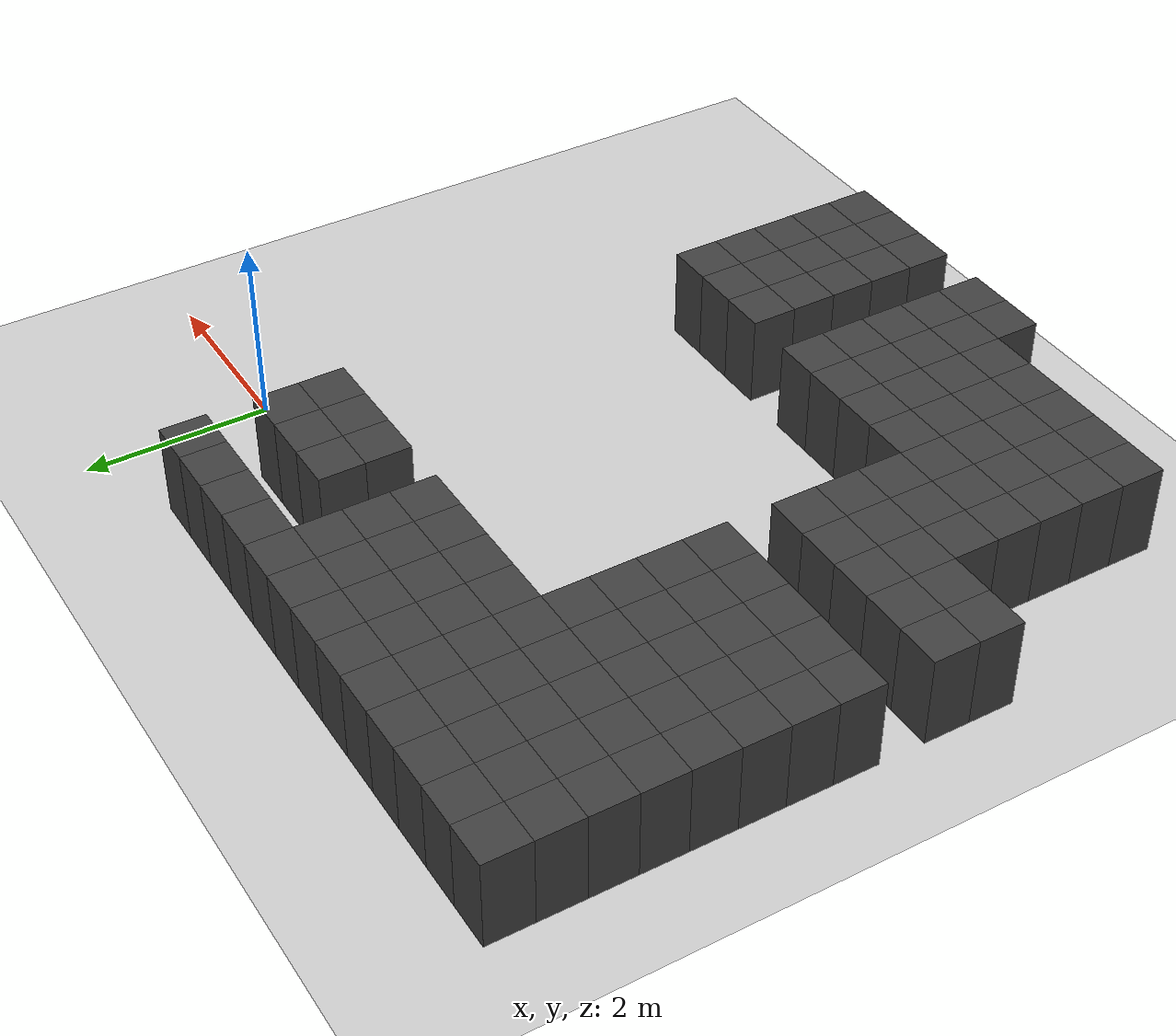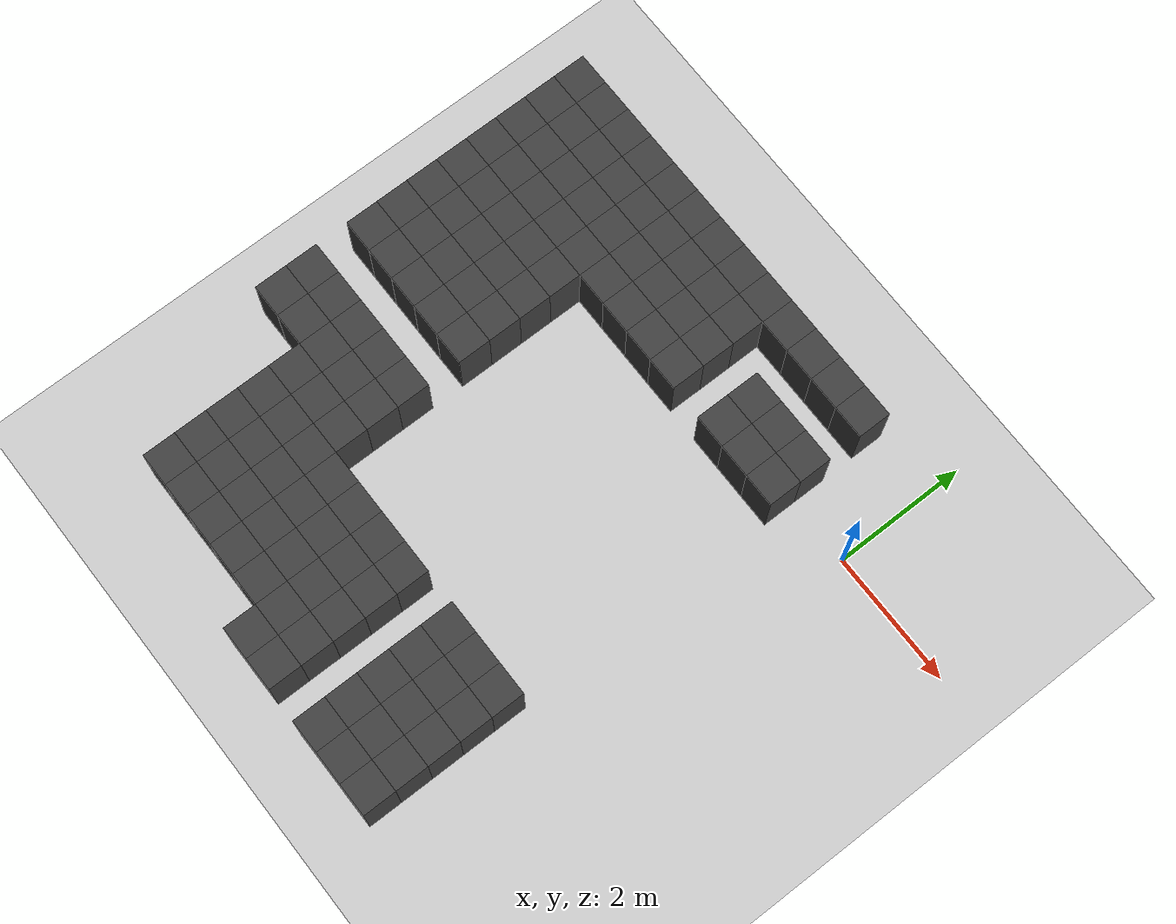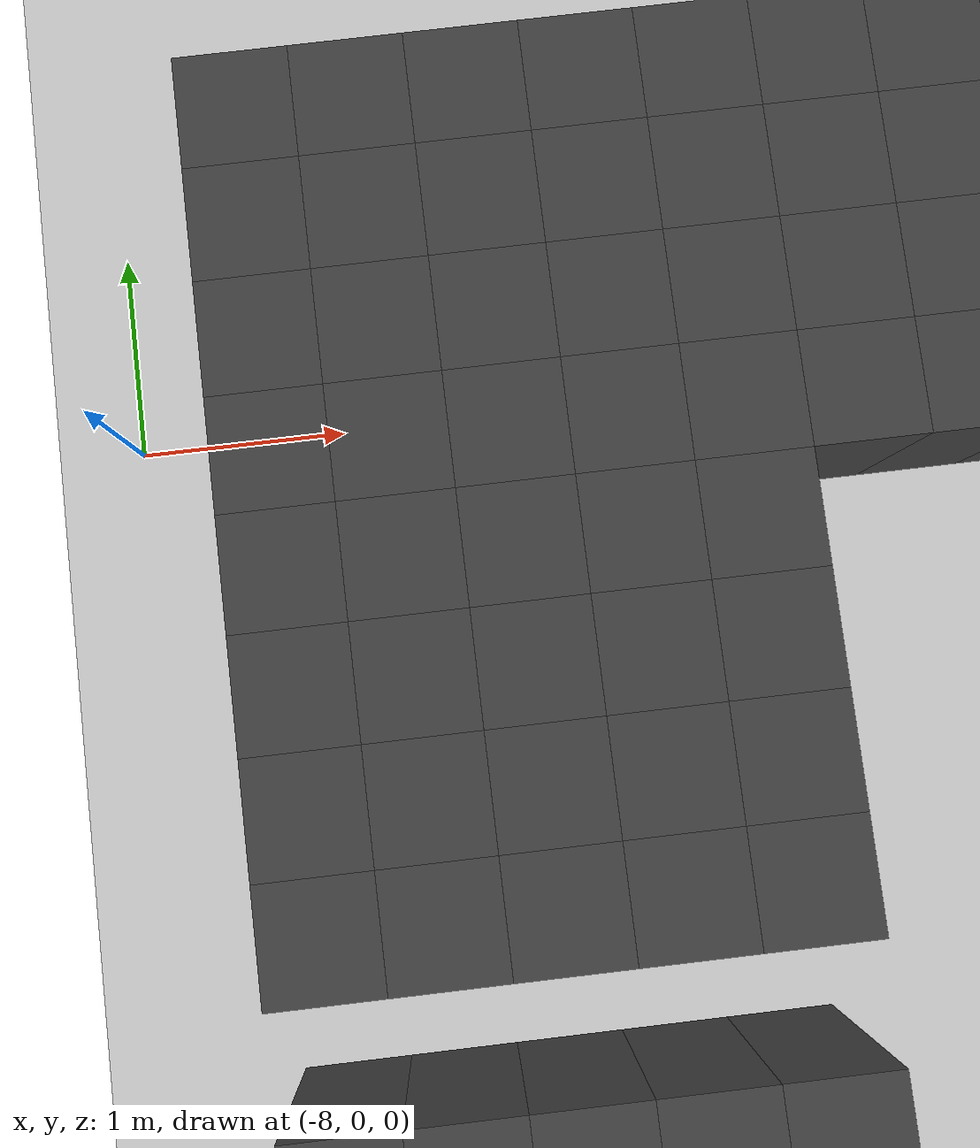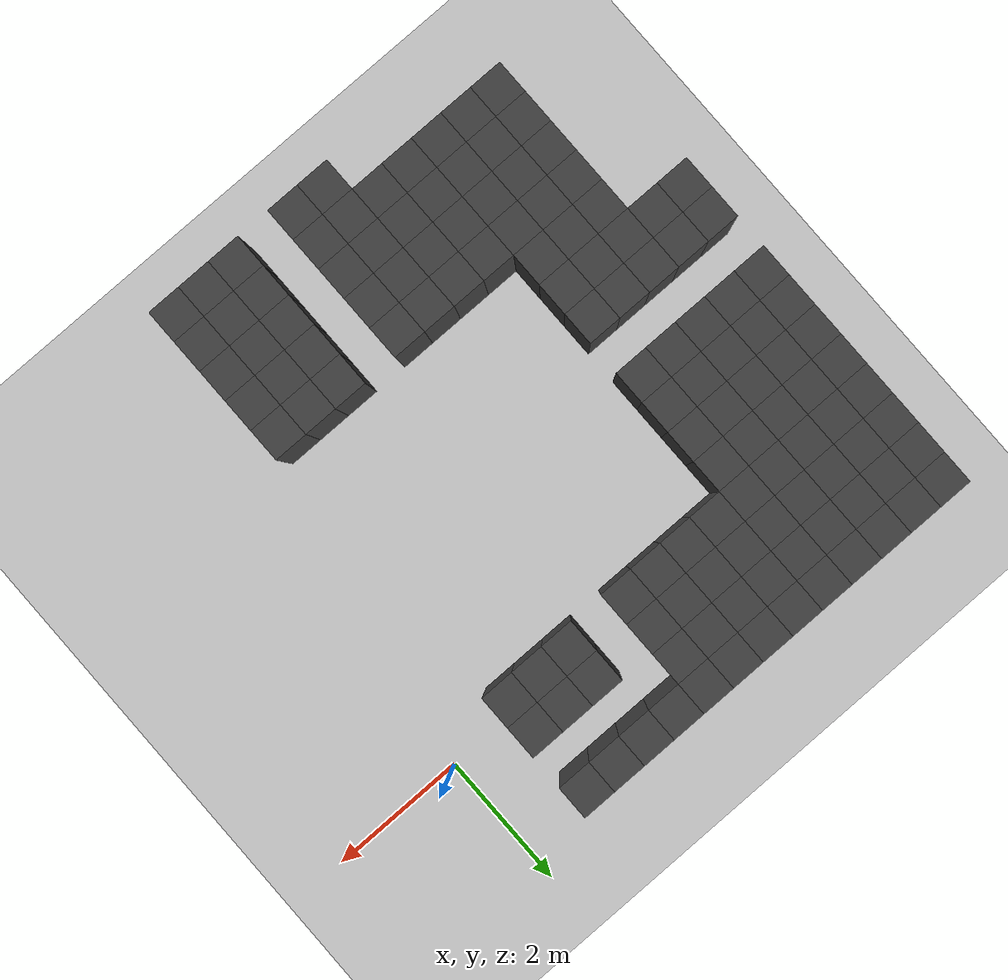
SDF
<sdf version="1.7">
 <world name="map_10726">
  <model name="ground_plane">
   <static>true</static>
   <link name="link">
    <collision name="collision">
     <geometry><plane><normal>0 0 1</normal><size>200 200</size></plane></geometry>
    </collision>
    <visual name="visual">
     <geometry><plane><normal>0 0 1</normal><size>200 200</size></plane></geometry>
     <material><ambient>0.8 0.8 0.8 1</ambient><diffuse>0.8 0.8 0.8 1</diffuse></material>
    </visual>
   </link>
  </model>
  <model name="maze_environment">
   <static>true</static>
   <link name="wall_1013">
    <pose>-7.250 1.250 0.500 0 0 0</pose>
    <collision name="col"><geometry><box><size>0.5 0.5 1.0</size></box></geometry></collision>
    <visual name="vis">
     <geometry><box><size>0.5 0.5 1.0</size></box></geometry>
     <material><ambient>0.15 0.15 0.15 1</ambient><diffuse>0.25 0.25 0.25 1</diffuse></material>
    </visual>
   </link>
   <link name="wall_1014">
    <pose>-6.750 1.250 0.500 0 0 0</pose>
    <collision name="col"><geometry><box><size>0.5 0.5 1.0</size></box></geometry></collision>
    <visual name="vis">
     <geometry><box><size>0.5 0.5 1.0</size></box></geometry>
     <material><ambient>0.15 0.15 0.15 1</ambient><diffuse>0.25 0.25 0.25 1</diffuse></material>
    </visual>
   </link>
   <link name="wall_1015">
    <pose>-6.250 1.250 0.500 0 0 0</pose>
    <collision name="col"><geometry><box><size>0.5 0.5 1.0</size></box></geometry></collision>
    <visual name="vis">
     <geometry><box><size>0.5 0.5 1.0</size></box></geometry>
     <material><ambient>0.15 0.15 0.15 1</ambient><diffuse>0.25 0.25 0.25 1</diffuse></material>
    </visual>
   </link>
   <link name="wall_1016">
    <pose>-5.750 1.250 0.500 0 0 0</pose>
    <collision name="col"><geometry><box><size>0.5 0.5 1.0</size></box></geometry></collision>
    <visual name="vis">
     <geometry><box><size>0.5 0.5 1.0</size></box></geometry>
     <material><ambient>0.15 0.15 0.15 1</ambient><diffuse>0.25 0.25 0.25 1</diffuse></material>
    </visual>
   </link>
   <link name="wall_1017">
    <pose>-5.250 1.250 0.500 0 0 0</pose>
    <collision name="col"><geometry><box><size>0.5 0.5 1.0</size></box></geometry></collision>
    <visual name="vis">
     <geometry><box><size>0.5 0.5 1.0</size></box></geometry>
     <material><ambient>0.15 0.15 0.15 1</ambient><diffuse>0.25 0.25 0.25 1</diffuse></material>
    </visual>
   </link>
   <link name="wall_1018">
    <pose>-4.750 1.250 0.500 0 0 0</pose>
    <collision name="col"><geometry><box><size>0.5 0.5 1.0</size></box></geometry></collision>
    <visual name="vis">
     <geometry><box><size>0.5 0.5 1.0</size></box></geometry>
     <material><ambient>0.15 0.15 0.15 1</ambient><diffuse>0.25 0.25 0.25 1</diffuse></material>
    </visual>
   </link>
   <link name="wall_1019">
    <pose>-4.250 1.250 0.500 0 0 0</pose>
    <collision name="col"><geometry><box><size>0.5 0.5 1.0</size></box></geometry></collision>
    <visual name="vis">
     <geometry><box><size>0.5 0.5 1.0</size></box></geometry>
     <material><ambient>0.15 0.15 0.15 1</ambient><diffuse>0.25 0.25 0.25 1</diffuse></material>
    </visual>
   </link>
   <link name="wall_1020">
    <pose>-3.750 1.250 0.500 0 0 0</pose>
    <collision name="col"><geometry><box><size>0.5 0.5 1.0</size></box></geometry></collision>
    <visual name="vis">
     <geometry><box><size>0.5 0.5 1.0</size></box></geometry>
     <material><ambient>0.15 0.15 0.15 1</ambient><diffuse>0.25 0.25 0.25 1</diffuse></material>
    </visual>
   </link>
   <link name="wall_1021">
    <pose>-3.250 1.250 0.500 0 0 0</pose>
    <collision name="col"><geometry><box><size>0.5 0.5 1.0</size></box></geometry></collision>
    <visual name="vis">
     <geometry><box><size>0.5 0.5 1.0</size></box></geometry>
     <material><ambient>0.15 0.15 0.15 1</ambient><diffuse>0.25 0.25 0.25 1</diffuse></material>
    </visual>
   </link>
   <link name="wall_1022">
    <pose>-2.750 1.250 0.500 0 0 0</pose>
    <collision name="col"><geometry><box><size>0.5 0.5 1.0</size></box></geometry></collision>
    <visual name="vis">
     <geometry><box><size>0.5 0.5 1.0</size></box></geometry>
     <material><ambient>0.15 0.15 0.15 1</ambient><diffuse>0.25 0.25 0.25 1</diffuse></material>
    </visual>
   </link>
   <link name="wall_1023">
    <pose>-2.250 1.250 0.500 0 0 0</pose>
    <collision name="col"><geometry><box><size>0.5 0.5 1.0</size></box></geometry></collision>
    <visual name="vis">
     <geometry><box><size>0.5 0.5 1.0</size></box></geometry>
     <material><ambient>0.15 0.15 0.15 1</ambient><diffuse>0.25 0.25 0.25 1</diffuse></material>
    </visual>
   </link>
   <link name="wall_1024">
    <pose>-1.750 1.250 0.500 0 0 0</pose>
    <collision name="col"><geometry><box><size>0.5 0.5 1.0</size></box></geometry></collision>
    <visual name="vis">
     <geometry><box><size>0.5 0.5 1.0</size></box></geometry>
     <material><ambient>0.15 0.15 0.15 1</ambient><diffuse>0.25 0.25 0.25 1</diffuse></material>
    </visual>
   </link>
   <link name="wall_1025">
    <pose>-1.250 1.250 0.500 0 0 0</pose>
    <collision name="col"><geometry><box><size>0.5 0.5 1.0</size></box></geometry></collision>
    <visual name="vis">
     <geometry><box><size>0.5 0.5 1.0</size></box></geometry>
     <material><ambient>0.15 0.15 0.15 1</ambient><diffuse>0.25 0.25 0.25 1</diffuse></material>
    </visual>
   </link>
   <link name="wall_1055">
    <pose>-7.250 0.750 0.500 0 0 0</pose>
    <collision name="col"><geometry><box><size>0.5 0.5 1.0</size></box></geometry></collision>
    <visual name="vis">
     <geometry><box><size>0.5 0.5 1.0</size></box></geometry>
     <material><ambient>0.15 0.15 0.15 1</ambient><diffuse>0.25 0.25 0.25 1</diffuse></material>
    </visual>
   </link>
   <link name="wall_1056">
    <pose>-6.750 0.750 0.500 0 0 0</pose>
    <collision name="col"><geometry><box><size>0.5 0.5 1.0</size></box></geometry></collision>
    <visual name="vis">
     <geometry><box><size>0.5 0.5 1.0</size></box></geometry>
     <material><ambient>0.15 0.15 0.15 1</ambient><diffuse>0.25 0.25 0.25 1</diffuse></material>
    </visual>
   </link>
   <link name="wall_1057">
    <pose>-6.250 0.750 0.500 0 0 0</pose>
    <collision name="col"><geometry><box><size>0.5 0.5 1.0</size></box></geometry></collision>
    <visual name="vis">
     <geometry><box><size>0.5 0.5 1.0</size></box></geometry>
     <material><ambient>0.15 0.15 0.15 1</ambient><diffuse>0.25 0.25 0.25 1</diffuse></material>
    </visual>
   </link>
   <link name="wall_1058">
    <pose>-5.750 0.750 0.500 0 0 0</pose>
    <collision name="col"><geometry><box><size>0.5 0.5 1.0</size></box></geometry></collision>
    <visual name="vis">
     <geometry><box><size>0.5 0.5 1.0</size></box></geometry>
     <material><ambient>0.15 0.15 0.15 1</ambient><diffuse>0.25 0.25 0.25 1</diffuse></material>
    </visual>
   </link>
   <link name="wall_1059">
    <pose>-5.250 0.750 0.500 0 0 0</pose>
    <collision name="col"><geometry><box><size>0.5 0.5 1.0</size></box></geometry></collision>
    <visual name="vis">
     <geometry><box><size>0.5 0.5 1.0</size></box></geometry>
     <material><ambient>0.15 0.15 0.15 1</ambient><diffuse>0.25 0.25 0.25 1</diffuse></material>
    </visual>
   </link>
   <link name="wall_1060">
    <pose>-4.750 0.750 0.500 0 0 0</pose>
    <collision name="col"><geometry><box><size>0.5 0.5 1.0</size></box></geometry></collision>
    <visual name="vis">
     <geometry><box><size>0.5 0.5 1.0</size></box></geometry>
     <material><ambient>0.15 0.15 0.15 1</ambient><diffuse>0.25 0.25 0.25 1</diffuse></material>
    </visual>
   </link>
   <link name="wall_1061">
    <pose>-4.250 0.750 0.500 0 0 0</pose>
    <collision name="col"><geometry><box><size>0.5 0.5 1.0</size></box></geometry></collision>
    <visual name="vis">
     <geometry><box><size>0.5 0.5 1.0</size></box></geometry>
     <material><ambient>0.15 0.15 0.15 1</ambient><diffuse>0.25 0.25 0.25 1</diffuse></material>
    </visual>
   </link>
   <link name="wall_1062">
    <pose>-3.750 0.750 0.500 0 0 0</pose>
    <collision name="col"><geometry><box><size>0.5 0.5 1.0</size></box></geometry></collision>
    <visual name="vis">
     <geometry><box><size>0.5 0.5 1.0</size></box></geometry>
     <material><ambient>0.15 0.15 0.15 1</ambient><diffuse>0.25 0.25 0.25 1</diffuse></material>
    </visual>
   </link>
   <link name="wall_1063">
    <pose>-3.250 0.750 0.500 0 0 0</pose>
    <collision name="col"><geometry><box><size>0.5 0.5 1.0</size></box></geometry></collision>
    <visual name="vis">
     <geometry><box><size>0.5 0.5 1.0</size></box></geometry>
     <material><ambient>0.15 0.15 0.15 1</ambient><diffuse>0.25 0.25 0.25 1</diffuse></material>
    </visual>
   </link>
   <link name="wall_1087">
    <pose>-7.250 0.250 0.500 0 0 0</pose>
    <collision name="col"><geometry><box><size>0.5 0.5 1.0</size></box></geometry></collision>
    <visual name="vis">
     <geometry><box><size>0.5 0.5 1.0</size></box></geometry>
     <material><ambient>0.15 0.15 0.15 1</ambient><diffuse>0.25 0.25 0.25 1</diffuse></material>
    </visual>
   </link>
   <link name="wall_1088">
    <pose>-6.750 0.250 0.500 0 0 0</pose>
    <collision name="col"><geometry><box><size>0.5 0.5 1.0</size></box></geometry></collision>
    <visual name="vis">
     <geometry><box><size>0.5 0.5 1.0</size></box></geometry>
     <material><ambient>0.15 0.15 0.15 1</ambient><diffuse>0.25 0.25 0.25 1</diffuse></material>
    </visual>
   </link>
   <link name="wall_1089">
    <pose>-6.250 0.250 0.500 0 0 0</pose>
    <collision name="col"><geometry><box><size>0.5 0.5 1.0</size></box></geometry></collision>
    <visual name="vis">
     <geometry><box><size>0.5 0.5 1.0</size></box></geometry>
     <material><ambient>0.15 0.15 0.15 1</ambient><diffuse>0.25 0.25 0.25 1</diffuse></material>
    </visual>
   </link>
   <link name="wall_1090">
    <pose>-5.750 0.250 0.500 0 0 0</pose>
    <collision name="col"><geometry><box><size>0.5 0.5 1.0</size></box></geometry></collision>
    <visual name="vis">
     <geometry><box><size>0.5 0.5 1.0</size></box></geometry>
     <material><ambient>0.15 0.15 0.15 1</ambient><diffuse>0.25 0.25 0.25 1</diffuse></material>
    </visual>
   </link>
   <link name="wall_1091">
    <pose>-5.250 0.250 0.500 0 0 0</pose>
    <collision name="col"><geometry><box><size>0.5 0.5 1.0</size></box></geometry></collision>
    <visual name="vis">
     <geometry><box><size>0.5 0.5 1.0</size></box></geometry>
     <material><ambient>0.15 0.15 0.15 1</ambient><diffuse>0.25 0.25 0.25 1</diffuse></material>
    </visual>
   </link>
   <link name="wall_1092">
    <pose>-4.750 0.250 0.500 0 0 0</pose>
    <collision name="col"><geometry><box><size>0.5 0.5 1.0</size></box></geometry></collision>
    <visual name="vis">
     <geometry><box><size>0.5 0.5 1.0</size></box></geometry>
     <material><ambient>0.15 0.15 0.15 1</ambient><diffuse>0.25 0.25 0.25 1</diffuse></material>
    </visual>
   </link>
   <link name="wall_1093">
    <pose>-4.250 0.250 0.500 0 0 0</pose>
    <collision name="col"><geometry><box><size>0.5 0.5 1.0</size></box></geometry></collision>
    <visual name="vis">
     <geometry><box><size>0.5 0.5 1.0</size></box></geometry>
     <material><ambient>0.15 0.15 0.15 1</ambient><diffuse>0.25 0.25 0.25 1</diffuse></material>
    </visual>
   </link>
   <link name="wall_1094">
    <pose>-3.750 0.250 0.500 0 0 0</pose>
    <collision name="col"><geometry><box><size>0.5 0.5 1.0</size></box></geometry></collision>
    <visual name="vis">
     <geometry><box><size>0.5 0.5 1.0</size></box></geometry>
     <material><ambient>0.15 0.15 0.15 1</ambient><diffuse>0.25 0.25 0.25 1</diffuse></material>
    </visual>
   </link>
   <link name="wall_1095">
    <pose>-3.250 0.250 0.500 0 0 0</pose>
    <collision name="col"><geometry><box><size>0.5 0.5 1.0</size></box></geometry></collision>
    <visual name="vis">
     <geometry><box><size>0.5 0.5 1.0</size></box></geometry>
     <material><ambient>0.15 0.15 0.15 1</ambient><diffuse>0.25 0.25 0.25 1</diffuse></material>
    </visual>
   </link>
   <link name="wall_1096">
    <pose>-2.250 0.250 0.500 0 0 0</pose>
    <collision name="col"><geometry><box><size>0.5 0.5 1.0</size></box></geometry></collision>
    <visual name="vis">
     <geometry><box><size>0.5 0.5 1.0</size></box></geometry>
     <material><ambient>0.15 0.15 0.15 1</ambient><diffuse>0.25 0.25 0.25 1</diffuse></material>
    </visual>
   </link>
   <link name="wall_1097">
    <pose>-1.750 0.250 0.500 0 0 0</pose>
    <collision name="col"><geometry><box><size>0.5 0.5 1.0</size></box></geometry></collision>
    <visual name="vis">
     <geometry><box><size>0.5 0.5 1.0</size></box></geometry>
     <material><ambient>0.15 0.15 0.15 1</ambient><diffuse>0.25 0.25 0.25 1</diffuse></material>
    </visual>
   </link>
   <link name="wall_1098">
    <pose>-1.250 0.250 0.500 0 0 0</pose>
    <collision name="col"><geometry><box><size>0.5 0.5 1.0</size></box></geometry></collision>
    <visual name="vis">
     <geometry><box><size>0.5 0.5 1.0</size></box></geometry>
     <material><ambient>0.15 0.15 0.15 1</ambient><diffuse>0.25 0.25 0.25 1</diffuse></material>
    </visual>
   </link>
   <link name="wall_1128">
    <pose>-7.250 -0.250 0.500 0 0 0</pose>
    <collision name="col"><geometry><box><size>0.5 0.5 1.0</size></box></geometry></collision>
    <visual name="vis">
     <geometry><box><size>0.5 0.5 1.0</size></box></geometry>
     <material><ambient>0.15 0.15 0.15 1</ambient><diffuse>0.25 0.25 0.25 1</diffuse></material>
    </visual>
   </link>
   <link name="wall_1129">
    <pose>-6.750 -0.250 0.500 0 0 0</pose>
    <collision name="col"><geometry><box><size>0.5 0.5 1.0</size></box></geometry></collision>
    <visual name="vis">
     <geometry><box><size>0.5 0.5 1.0</size></box></geometry>
     <material><ambient>0.15 0.15 0.15 1</ambient><diffuse>0.25 0.25 0.25 1</diffuse></material>
    </visual>
   </link>
   <link name="wall_1130">
    <pose>-6.250 -0.250 0.500 0 0 0</pose>
    <collision name="col"><geometry><box><size>0.5 0.5 1.0</size></box></geometry></collision>
    <visual name="vis">
     <geometry><box><size>0.5 0.5 1.0</size></box></geometry>
     <material><ambient>0.15 0.15 0.15 1</ambient><diffuse>0.25 0.25 0.25 1</diffuse></material>
    </visual>
   </link>
   <link name="wall_1131">
    <pose>-5.750 -0.250 0.500 0 0 0</pose>
    <collision name="col"><geometry><box><size>0.5 0.5 1.0</size></box></geometry></collision>
    <visual name="vis">
     <geometry><box><size>0.5 0.5 1.0</size></box></geometry>
     <material><ambient>0.15 0.15 0.15 1</ambient><diffuse>0.25 0.25 0.25 1</diffuse></material>
    </visual>
   </link>
   <link name="wall_1132">
    <pose>-5.250 -0.250 0.500 0 0 0</pose>
    <collision name="col"><geometry><box><size>0.5 0.5 1.0</size></box></geometry></collision>
    <visual name="vis">
     <geometry><box><size>0.5 0.5 1.0</size></box></geometry>
     <material><ambient>0.15 0.15 0.15 1</ambient><diffuse>0.25 0.25 0.25 1</diffuse></material>
    </visual>
   </link>
   <link name="wall_1133">
    <pose>-4.750 -0.250 0.500 0 0 0</pose>
    <collision name="col"><geometry><box><size>0.5 0.5 1.0</size></box></geometry></collision>
    <visual name="vis">
     <geometry><box><size>0.5 0.5 1.0</size></box></geometry>
     <material><ambient>0.15 0.15 0.15 1</ambient><diffuse>0.25 0.25 0.25 1</diffuse></material>
    </visual>
   </link>
   <link name="wall_1134">
    <pose>-4.250 -0.250 0.500 0 0 0</pose>
    <collision name="col"><geometry><box><size>0.5 0.5 1.0</size></box></geometry></collision>
    <visual name="vis">
     <geometry><box><size>0.5 0.5 1.0</size></box></geometry>
     <material><ambient>0.15 0.15 0.15 1</ambient><diffuse>0.25 0.25 0.25 1</diffuse></material>
    </visual>
   </link>
   <link name="wall_1135">
    <pose>-3.750 -0.250 0.500 0 0 0</pose>
    <collision name="col"><geometry><box><size>0.5 0.5 1.0</size></box></geometry></collision>
    <visual name="vis">
     <geometry><box><size>0.5 0.5 1.0</size></box></geometry>
     <material><ambient>0.15 0.15 0.15 1</ambient><diffuse>0.25 0.25 0.25 1</diffuse></material>
    </visual>
   </link>
   <link name="wall_1136">
    <pose>-3.250 -0.250 0.500 0 0 0</pose>
    <collision name="col"><geometry><box><size>0.5 0.5 1.0</size></box></geometry></collision>
    <visual name="vis">
     <geometry><box><size>0.5 0.5 1.0</size></box></geometry>
     <material><ambient>0.15 0.15 0.15 1</ambient><diffuse>0.25 0.25 0.25 1</diffuse></material>
    </visual>
   </link>
   <link name="wall_1137">
    <pose>-2.250 -0.250 0.500 0 0 0</pose>
    <collision name="col"><geometry><box><size>0.5 0.5 1.0</size></box></geometry></collision>
    <visual name="vis">
     <geometry><box><size>0.5 0.5 1.0</size></box></geometry>
     <material><ambient>0.15 0.15 0.15 1</ambient><diffuse>0.25 0.25 0.25 1</diffuse></material>
    </visual>
   </link>
   <link name="wall_1138">
    <pose>-1.750 -0.250 0.500 0 0 0</pose>
    <collision name="col"><geometry><box><size>0.5 0.5 1.0</size></box></geometry></collision>
    <visual name="vis">
     <geometry><box><size>0.5 0.5 1.0</size></box></geometry>
     <material><ambient>0.15 0.15 0.15 1</ambient><diffuse>0.25 0.25 0.25 1</diffuse></material>
    </visual>
   </link>
   <link name="wall_1139">
    <pose>-1.250 -0.250 0.500 0 0 0</pose>
    <collision name="col"><geometry><box><size>0.5 0.5 1.0</size></box></geometry></collision>
    <visual name="vis">
     <geometry><box><size>0.5 0.5 1.0</size></box></geometry>
     <material><ambient>0.15 0.15 0.15 1</ambient><diffuse>0.25 0.25 0.25 1</diffuse></material>
    </visual>
   </link>
   <link name="wall_1169">
    <pose>-7.250 -0.750 0.500 0 0 0</pose>
    <collision name="col"><geometry><box><size>0.5 0.5 1.0</size></box></geometry></collision>
    <visual name="vis">
     <geometry><box><size>0.5 0.5 1.0</size></box></geometry>
     <material><ambient>0.15 0.15 0.15 1</ambient><diffuse>0.25 0.25 0.25 1</diffuse></material>
    </visual>
   </link>
   <link name="wall_1170">
    <pose>-6.750 -0.750 0.500 0 0 0</pose>
    <collision name="col"><geometry><box><size>0.5 0.5 1.0</size></box></geometry></collision>
    <visual name="vis">
     <geometry><box><size>0.5 0.5 1.0</size></box></geometry>
     <material><ambient>0.15 0.15 0.15 1</ambient><diffuse>0.25 0.25 0.25 1</diffuse></material>
    </visual>
   </link>
   <link name="wall_1171">
    <pose>-6.250 -0.750 0.500 0 0 0</pose>
    <collision name="col"><geometry><box><size>0.5 0.5 1.0</size></box></geometry></collision>
    <visual name="vis">
     <geometry><box><size>0.5 0.5 1.0</size></box></geometry>
     <material><ambient>0.15 0.15 0.15 1</ambient><diffuse>0.25 0.25 0.25 1</diffuse></material>
    </visual>
   </link>
   <link name="wall_1172">
    <pose>-5.750 -0.750 0.500 0 0 0</pose>
    <collision name="col"><geometry><box><size>0.5 0.5 1.0</size></box></geometry></collision>
    <visual name="vis">
     <geometry><box><size>0.5 0.5 1.0</size></box></geometry>
     <material><ambient>0.15 0.15 0.15 1</ambient><diffuse>0.25 0.25 0.25 1</diffuse></material>
    </visual>
   </link>
   <link name="wall_1173">
    <pose>-5.250 -0.750 0.500 0 0 0</pose>
    <collision name="col"><geometry><box><size>0.5 0.5 1.0</size></box></geometry></collision>
    <visual name="vis">
     <geometry><box><size>0.5 0.5 1.0</size></box></geometry>
     <material><ambient>0.15 0.15 0.15 1</ambient><diffuse>0.25 0.25 0.25 1</diffuse></material>
    </visual>
   </link>
   <link name="wall_1209">
    <pose>-7.250 -1.250 0.500 0 0 0</pose>
    <collision name="col"><geometry><box><size>0.5 0.5 1.0</size></box></geometry></collision>
    <visual name="vis">
     <geometry><box><size>0.5 0.5 1.0</size></box></geometry>
     <material><ambient>0.15 0.15 0.15 1</ambient><diffuse>0.25 0.25 0.25 1</diffuse></material>
    </visual>
   </link>
   <link name="wall_1210">
    <pose>-6.750 -1.250 0.500 0 0 0</pose>
    <collision name="col"><geometry><box><size>0.5 0.5 1.0</size></box></geometry></collision>
    <visual name="vis">
     <geometry><box><size>0.5 0.5 1.0</size></box></geometry>
     <material><ambient>0.15 0.15 0.15 1</ambient><diffuse>0.25 0.25 0.25 1</diffuse></material>
    </visual>
   </link>
   <link name="wall_1211">
    <pose>-6.250 -1.250 0.500 0 0 0</pose>
    <collision name="col"><geometry><box><size>0.5 0.5 1.0</size></box></geometry></collision>
    <visual name="vis">
     <geometry><box><size>0.5 0.5 1.0</size></box></geometry>
     <material><ambient>0.15 0.15 0.15 1</ambient><diffuse>0.25 0.25 0.25 1</diffuse></material>
    </visual>
   </link>
   <link name="wall_1212">
    <pose>-5.750 -1.250 0.500 0 0 0</pose>
    <collision name="col"><geometry><box><size>0.5 0.5 1.0</size></box></geometry></collision>
    <visual name="vis">
     <geometry><box><size>0.5 0.5 1.0</size></box></geometry>
     <material><ambient>0.15 0.15 0.15 1</ambient><diffuse>0.25 0.25 0.25 1</diffuse></material>
    </visual>
   </link>
   <link name="wall_1213">
    <pose>-5.250 -1.250 0.500 0 0 0</pose>
    <collision name="col"><geometry><box><size>0.5 0.5 1.0</size></box></geometry></collision>
    <visual name="vis">
     <geometry><box><size>0.5 0.5 1.0</size></box></geometry>
     <material><ambient>0.15 0.15 0.15 1</ambient><diffuse>0.25 0.25 0.25 1</diffuse></material>
    </visual>
   </link>
   <link name="wall_1249">
    <pose>-7.250 -1.750 0.500 0 0 0</pose>
    <collision name="col"><geometry><box><size>0.5 0.5 1.0</size></box></geometry></collision>
    <visual name="vis">
     <geometry><box><size>0.5 0.5 1.0</size></box></geometry>
     <material><ambient>0.15 0.15 0.15 1</ambient><diffuse>0.25 0.25 0.25 1</diffuse></material>
    </visual>
   </link>
   <link name="wall_1250">
    <pose>-6.750 -1.750 0.500 0 0 0</pose>
    <collision name="col"><geometry><box><size>0.5 0.5 1.0</size></box></geometry></collision>
    <visual name="vis">
     <geometry><box><size>0.5 0.5 1.0</size></box></geometry>
     <material><ambient>0.15 0.15 0.15 1</ambient><diffuse>0.25 0.25 0.25 1</diffuse></material>
    </visual>
   </link>
   <link name="wall_1251">
    <pose>-6.250 -1.750 0.500 0 0 0</pose>
    <collision name="col"><geometry><box><size>0.5 0.5 1.0</size></box></geometry></collision>
    <visual name="vis">
     <geometry><box><size>0.5 0.5 1.0</size></box></geometry>
     <material><ambient>0.15 0.15 0.15 1</ambient><diffuse>0.25 0.25 0.25 1</diffuse></material>
    </visual>
   </link>
   <link name="wall_1252">
    <pose>-5.750 -1.750 0.500 0 0 0</pose>
    <collision name="col"><geometry><box><size>0.5 0.5 1.0</size></box></geometry></collision>
    <visual name="vis">
     <geometry><box><size>0.5 0.5 1.0</size></box></geometry>
     <material><ambient>0.15 0.15 0.15 1</ambient><diffuse>0.25 0.25 0.25 1</diffuse></material>
    </visual>
   </link>
   <link name="wall_1253">
    <pose>-5.250 -1.750 0.500 0 0 0</pose>
    <collision name="col"><geometry><box><size>0.5 0.5 1.0</size></box></geometry></collision>
    <visual name="vis">
     <geometry><box><size>0.5 0.5 1.0</size></box></geometry>
     <material><ambient>0.15 0.15 0.15 1</ambient><diffuse>0.25 0.25 0.25 1</diffuse></material>
    </visual>
   </link>
   <link name="wall_1281">
    <pose>-7.250 -2.250 0.500 0 0 0</pose>
    <collision name="col"><geometry><box><size>0.5 0.5 1.0</size></box></geometry></collision>
    <visual name="vis">
     <geometry><box><size>0.5 0.5 1.0</size></box></geometry>
     <material><ambient>0.15 0.15 0.15 1</ambient><diffuse>0.25 0.25 0.25 1</diffuse></material>
    </visual>
   </link>
   <link name="wall_1282">
    <pose>-6.750 -2.250 0.500 0 0 0</pose>
    <collision name="col"><geometry><box><size>0.5 0.5 1.0</size></box></geometry></collision>
    <visual name="vis">
     <geometry><box><size>0.5 0.5 1.0</size></box></geometry>
     <material><ambient>0.15 0.15 0.15 1</ambient><diffuse>0.25 0.25 0.25 1</diffuse></material>
    </visual>
   </link>
   <link name="wall_1283">
    <pose>-6.250 -2.250 0.500 0 0 0</pose>
    <collision name="col"><geometry><box><size>0.5 0.5 1.0</size></box></geometry></collision>
    <visual name="vis">
     <geometry><box><size>0.5 0.5 1.0</size></box></geometry>
     <material><ambient>0.15 0.15 0.15 1</ambient><diffuse>0.25 0.25 0.25 1</diffuse></material>
    </visual>
   </link>
   <link name="wall_1284">
    <pose>-5.750 -2.250 0.500 0 0 0</pose>
    <collision name="col"><geometry><box><size>0.5 0.5 1.0</size></box></geometry></collision>
    <visual name="vis">
     <geometry><box><size>0.5 0.5 1.0</size></box></geometry>
     <material><ambient>0.15 0.15 0.15 1</ambient><diffuse>0.25 0.25 0.25 1</diffuse></material>
    </visual>
   </link>
   <link name="wall_1285">
    <pose>-5.250 -2.250 0.500 0 0 0</pose>
    <collision name="col"><geometry><box><size>0.5 0.5 1.0</size></box></geometry></collision>
    <visual name="vis">
     <geometry><box><size>0.5 0.5 1.0</size></box></geometry>
     <material><ambient>0.15 0.15 0.15 1</ambient><diffuse>0.25 0.25 0.25 1</diffuse></material>
    </visual>
   </link>
   <link name="wall_1336">
    <pose>-7.250 -3.250 0.500 0 0 0</pose>
    <collision name="col"><geometry><box><size>0.5 0.5 1.0</size></box></geometry></collision>
    <visual name="vis">
     <geometry><box><size>0.5 0.5 1.0</size></box></geometry>
     <material><ambient>0.15 0.15 0.15 1</ambient><diffuse>0.25 0.25 0.25 1</diffuse></material>
    </visual>
   </link>
   <link name="wall_1337">
    <pose>-6.750 -3.250 0.500 0 0 0</pose>
    <collision name="col"><geometry><box><size>0.5 0.5 1.0</size></box></geometry></collision>
    <visual name="vis">
     <geometry><box><size>0.5 0.5 1.0</size></box></geometry>
     <material><ambient>0.15 0.15 0.15 1</ambient><diffuse>0.25 0.25 0.25 1</diffuse></material>
    </visual>
   </link>
   <link name="wall_1338">
    <pose>-6.250 -3.250 0.500 0 0 0</pose>
    <collision name="col"><geometry><box><size>0.5 0.5 1.0</size></box></geometry></collision>
    <visual name="vis">
     <geometry><box><size>0.5 0.5 1.0</size></box></geometry>
     <material><ambient>0.15 0.15 0.15 1</ambient><diffuse>0.25 0.25 0.25 1</diffuse></material>
    </visual>
   </link>
   <link name="wall_1339">
    <pose>-5.750 -3.250 0.500 0 0 0</pose>
    <collision name="col"><geometry><box><size>0.5 0.5 1.0</size></box></geometry></collision>
    <visual name="vis">
     <geometry><box><size>0.5 0.5 1.0</size></box></geometry>
     <material><ambient>0.15 0.15 0.15 1</ambient><diffuse>0.25 0.25 0.25 1</diffuse></material>
    </visual>
   </link>
   <link name="wall_1340">
    <pose>-5.250 -3.250 0.500 0 0 0</pose>
    <collision name="col"><geometry><box><size>0.5 0.5 1.0</size></box></geometry></collision>
    <visual name="vis">
     <geometry><box><size>0.5 0.5 1.0</size></box></geometry>
     <material><ambient>0.15 0.15 0.15 1</ambient><diffuse>0.25 0.25 0.25 1</diffuse></material>
    </visual>
   </link>
   <link name="wall_1368">
    <pose>-7.250 -3.750 0.500 0 0 0</pose>
    <collision name="col"><geometry><box><size>0.5 0.5 1.0</size></box></geometry></collision>
    <visual name="vis">
     <geometry><box><size>0.5 0.5 1.0</size></box></geometry>
     <material><ambient>0.15 0.15 0.15 1</ambient><diffuse>0.25 0.25 0.25 1</diffuse></material>
    </visual>
   </link>
   <link name="wall_1369">
    <pose>-6.750 -3.750 0.500 0 0 0</pose>
    <collision name="col"><geometry><box><size>0.5 0.5 1.0</size></box></geometry></collision>
    <visual name="vis">
     <geometry><box><size>0.5 0.5 1.0</size></box></geometry>
     <material><ambient>0.15 0.15 0.15 1</ambient><diffuse>0.25 0.25 0.25 1</diffuse></material>
    </visual>
   </link>
   <link name="wall_1370">
    <pose>-6.250 -3.750 0.500 0 0 0</pose>
    <collision name="col"><geometry><box><size>0.5 0.5 1.0</size></box></geometry></collision>
    <visual name="vis">
     <geometry><box><size>0.5 0.5 1.0</size></box></geometry>
     <material><ambient>0.15 0.15 0.15 1</ambient><diffuse>0.25 0.25 0.25 1</diffuse></material>
    </visual>
   </link>
   <link name="wall_1371">
    <pose>-5.750 -3.750 0.500 0 0 0</pose>
    <collision name="col"><geometry><box><size>0.5 0.5 1.0</size></box></geometry></collision>
    <visual name="vis">
     <geometry><box><size>0.5 0.5 1.0</size></box></geometry>
     <material><ambient>0.15 0.15 0.15 1</ambient><diffuse>0.25 0.25 0.25 1</diffuse></material>
    </visual>
   </link>
   <link name="wall_1372">
    <pose>-5.250 -3.750 0.500 0 0 0</pose>
    <collision name="col"><geometry><box><size>0.5 0.5 1.0</size></box></geometry></collision>
    <visual name="vis">
     <geometry><box><size>0.5 0.5 1.0</size></box></geometry>
     <material><ambient>0.15 0.15 0.15 1</ambient><diffuse>0.25 0.25 0.25 1</diffuse></material>
    </visual>
   </link>
   <link name="wall_1404">
    <pose>-6.250 -4.250 0.500 0 0 0</pose>
    <collision name="col"><geometry><box><size>0.5 0.5 1.0</size></box></geometry></collision>
    <visual name="vis">
     <geometry><box><size>0.5 0.5 1.0</size></box></geometry>
     <material><ambient>0.15 0.15 0.15 1</ambient><diffuse>0.25 0.25 0.25 1</diffuse></material>
    </visual>
   </link>
   <link name="wall_1405">
    <pose>-5.750 -4.250 0.500 0 0 0</pose>
    <collision name="col"><geometry><box><size>0.5 0.5 1.0</size></box></geometry></collision>
    <visual name="vis">
     <geometry><box><size>0.5 0.5 1.0</size></box></geometry>
     <material><ambient>0.15 0.15 0.15 1</ambient><diffuse>0.25 0.25 0.25 1</diffuse></material>
    </visual>
   </link>
   <link name="wall_1406">
    <pose>-5.250 -4.250 0.500 0 0 0</pose>
    <collision name="col"><geometry><box><size>0.5 0.5 1.0</size></box></geometry></collision>
    <visual name="vis">
     <geometry><box><size>0.5 0.5 1.0</size></box></geometry>
     <material><ambient>0.15 0.15 0.15 1</ambient><diffuse>0.25 0.25 0.25 1</diffuse></material>
    </visual>
   </link>
   <link name="wall_1438">
    <pose>-6.250 -4.750 0.500 0 0 0</pose>
    <collision name="col"><geometry><box><size>0.5 0.5 1.0</size></box></geometry></collision>
    <visual name="vis">
     <geometry><box><size>0.5 0.5 1.0</size></box></geometry>
     <material><ambient>0.15 0.15 0.15 1</ambient><diffuse>0.25 0.25 0.25 1</diffuse></material>
    </visual>
   </link>
   <link name="wall_1439">
    <pose>-5.750 -4.750 0.500 0 0 0</pose>
    <collision name="col"><geometry><box><size>0.5 0.5 1.0</size></box></geometry></collision>
    <visual name="vis">
     <geometry><box><size>0.5 0.5 1.0</size></box></geometry>
     <material><ambient>0.15 0.15 0.15 1</ambient><diffuse>0.25 0.25 0.25 1</diffuse></material>
    </visual>
   </link>
   <link name="wall_1440">
    <pose>-5.250 -4.750 0.500 0 0 0</pose>
    <collision name="col"><geometry><box><size>0.5 0.5 1.0</size></box></geometry></collision>
    <visual name="vis">
     <geometry><box><size>0.5 0.5 1.0</size></box></geometry>
     <material><ambient>0.15 0.15 0.15 1</ambient><diffuse>0.25 0.25 0.25 1</diffuse></material>
    </visual>
   </link>
   <link name="wall_1441">
    <pose>-4.750 -4.750 0.500 0 0 0</pose>
    <collision name="col"><geometry><box><size>0.5 0.5 1.0</size></box></geometry></collision>
    <visual name="vis">
     <geometry><box><size>0.5 0.5 1.0</size></box></geometry>
     <material><ambient>0.15 0.15 0.15 1</ambient><diffuse>0.25 0.25 0.25 1</diffuse></material>
    </visual>
   </link>
   <link name="wall_1442">
    <pose>-4.250 -4.750 0.500 0 0 0</pose>
    <collision name="col"><geometry><box><size>0.5 0.5 1.0</size></box></geometry></collision>
    <visual name="vis">
     <geometry><box><size>0.5 0.5 1.0</size></box></geometry>
     <material><ambient>0.15 0.15 0.15 1</ambient><diffuse>0.25 0.25 0.25 1</diffuse></material>
    </visual>
   </link>
   <link name="wall_1443">
    <pose>-3.750 -4.750 0.500 0 0 0</pose>
    <collision name="col"><geometry><box><size>0.5 0.5 1.0</size></box></geometry></collision>
    <visual name="vis">
     <geometry><box><size>0.5 0.5 1.0</size></box></geometry>
     <material><ambient>0.15 0.15 0.15 1</ambient><diffuse>0.25 0.25 0.25 1</diffuse></material>
    </visual>
   </link>
   <link name="wall_1444">
    <pose>-3.250 -4.750 0.500 0 0 0</pose>
    <collision name="col"><geometry><box><size>0.5 0.5 1.0</size></box></geometry></collision>
    <visual name="vis">
     <geometry><box><size>0.5 0.5 1.0</size></box></geometry>
     <material><ambient>0.15 0.15 0.15 1</ambient><diffuse>0.25 0.25 0.25 1</diffuse></material>
    </visual>
   </link>
   <link name="wall_1445">
    <pose>-2.250 -4.750 0.500 0 0 0</pose>
    <collision name="col"><geometry><box><size>0.5 0.5 1.0</size></box></geometry></collision>
    <visual name="vis">
     <geometry><box><size>0.5 0.5 1.0</size></box></geometry>
     <material><ambient>0.15 0.15 0.15 1</ambient><diffuse>0.25 0.25 0.25 1</diffuse></material>
    </visual>
   </link>
   <link name="wall_1446">
    <pose>-1.750 -4.750 0.500 0 0 0</pose>
    <collision name="col"><geometry><box><size>0.5 0.5 1.0</size></box></geometry></collision>
    <visual name="vis">
     <geometry><box><size>0.5 0.5 1.0</size></box></geometry>
     <material><ambient>0.15 0.15 0.15 1</ambient><diffuse>0.25 0.25 0.25 1</diffuse></material>
    </visual>
   </link>
   <link name="wall_1447">
    <pose>-1.250 -4.750 0.500 0 0 0</pose>
    <collision name="col"><geometry><box><size>0.5 0.5 1.0</size></box></geometry></collision>
    <visual name="vis">
     <geometry><box><size>0.5 0.5 1.0</size></box></geometry>
     <material><ambient>0.15 0.15 0.15 1</ambient><diffuse>0.25 0.25 0.25 1</diffuse></material>
    </visual>
   </link>
   <link name="wall_1476">
    <pose>-6.250 -5.250 0.500 0 0 0</pose>
    <collision name="col"><geometry><box><size>0.5 0.5 1.0</size></box></geometry></collision>
    <visual name="vis">
     <geometry><box><size>0.5 0.5 1.0</size></box></geometry>
     <material><ambient>0.15 0.15 0.15 1</ambient><diffuse>0.25 0.25 0.25 1</diffuse></material>
    </visual>
   </link>
   <link name="wall_1477">
    <pose>-5.750 -5.250 0.500 0 0 0</pose>
    <collision name="col"><geometry><box><size>0.5 0.5 1.0</size></box></geometry></collision>
    <visual name="vis">
     <geometry><box><size>0.5 0.5 1.0</size></box></geometry>
     <material><ambient>0.15 0.15 0.15 1</ambient><diffuse>0.25 0.25 0.25 1</diffuse></material>
    </visual>
   </link>
   <link name="wall_1478">
    <pose>-5.250 -5.250 0.500 0 0 0</pose>
    <collision name="col"><geometry><box><size>0.5 0.5 1.0</size></box></geometry></collision>
    <visual name="vis">
     <geometry><box><size>0.5 0.5 1.0</size></box></geometry>
     <material><ambient>0.15 0.15 0.15 1</ambient><diffuse>0.25 0.25 0.25 1</diffuse></material>
    </visual>
   </link>
   <link name="wall_1479">
    <pose>-4.750 -5.250 0.500 0 0 0</pose>
    <collision name="col"><geometry><box><size>0.5 0.5 1.0</size></box></geometry></collision>
    <visual name="vis">
     <geometry><box><size>0.5 0.5 1.0</size></box></geometry>
     <material><ambient>0.15 0.15 0.15 1</ambient><diffuse>0.25 0.25 0.25 1</diffuse></material>
    </visual>
   </link>
   <link name="wall_1480">
    <pose>-4.250 -5.250 0.500 0 0 0</pose>
    <collision name="col"><geometry><box><size>0.5 0.5 1.0</size></box></geometry></collision>
    <visual name="vis">
     <geometry><box><size>0.5 0.5 1.0</size></box></geometry>
     <material><ambient>0.15 0.15 0.15 1</ambient><diffuse>0.25 0.25 0.25 1</diffuse></material>
    </visual>
   </link>
   <link name="wall_1481">
    <pose>-3.750 -5.250 0.500 0 0 0</pose>
    <collision name="col"><geometry><box><size>0.5 0.5 1.0</size></box></geometry></collision>
    <visual name="vis">
     <geometry><box><size>0.5 0.5 1.0</size></box></geometry>
     <material><ambient>0.15 0.15 0.15 1</ambient><diffuse>0.25 0.25 0.25 1</diffuse></material>
    </visual>
   </link>
   <link name="wall_1482">
    <pose>-3.250 -5.250 0.500 0 0 0</pose>
    <collision name="col"><geometry><box><size>0.5 0.5 1.0</size></box></geometry></collision>
    <visual name="vis">
     <geometry><box><size>0.5 0.5 1.0</size></box></geometry>
     <material><ambient>0.15 0.15 0.15 1</ambient><diffuse>0.25 0.25 0.25 1</diffuse></material>
    </visual>
   </link>
   <link name="wall_1483">
    <pose>-2.250 -5.250 0.500 0 0 0</pose>
    <collision name="col"><geometry><box><size>0.5 0.5 1.0</size></box></geometry></collision>
    <visual name="vis">
     <geometry><box><size>0.5 0.5 1.0</size></box></geometry>
     <material><ambient>0.15 0.15 0.15 1</ambient><diffuse>0.25 0.25 0.25 1</diffuse></material>
    </visual>
   </link>
   <link name="wall_1484">
    <pose>-1.750 -5.250 0.500 0 0 0</pose>
    <collision name="col"><geometry><box><size>0.5 0.5 1.0</size></box></geometry></collision>
    <visual name="vis">
     <geometry><box><size>0.5 0.5 1.0</size></box></geometry>
     <material><ambient>0.15 0.15 0.15 1</ambient><diffuse>0.25 0.25 0.25 1</diffuse></material>
    </visual>
   </link>
   <link name="wall_1485">
    <pose>-1.250 -5.250 0.500 0 0 0</pose>
    <collision name="col"><geometry><box><size>0.5 0.5 1.0</size></box></geometry></collision>
    <visual name="vis">
     <geometry><box><size>0.5 0.5 1.0</size></box></geometry>
     <material><ambient>0.15 0.15 0.15 1</ambient><diffuse>0.25 0.25 0.25 1</diffuse></material>
    </visual>
   </link>
   <link name="wall_1518">
    <pose>-6.250 -5.750 0.500 0 0 0</pose>
    <collision name="col"><geometry><box><size>0.5 0.5 1.0</size></box></geometry></collision>
    <visual name="vis">
     <geometry><box><size>0.5 0.5 1.0</size></box></geometry>
     <material><ambient>0.15 0.15 0.15 1</ambient><diffuse>0.25 0.25 0.25 1</diffuse></material>
    </visual>
   </link>
   <link name="wall_1519">
    <pose>-5.750 -5.750 0.500 0 0 0</pose>
    <collision name="col"><geometry><box><size>0.5 0.5 1.0</size></box></geometry></collision>
    <visual name="vis">
     <geometry><box><size>0.5 0.5 1.0</size></box></geometry>
     <material><ambient>0.15 0.15 0.15 1</ambient><diffuse>0.25 0.25 0.25 1</diffuse></material>
    </visual>
   </link>
   <link name="wall_1520">
    <pose>-5.250 -5.750 0.500 0 0 0</pose>
    <collision name="col"><geometry><box><size>0.5 0.5 1.0</size></box></geometry></collision>
    <visual name="vis">
     <geometry><box><size>0.5 0.5 1.0</size></box></geometry>
     <material><ambient>0.15 0.15 0.15 1</ambient><diffuse>0.25 0.25 0.25 1</diffuse></material>
    </visual>
   </link>
   <link name="wall_1521">
    <pose>-4.750 -5.750 0.500 0 0 0</pose>
    <collision name="col"><geometry><box><size>0.5 0.5 1.0</size></box></geometry></collision>
    <visual name="vis">
     <geometry><box><size>0.5 0.5 1.0</size></box></geometry>
     <material><ambient>0.15 0.15 0.15 1</ambient><diffuse>0.25 0.25 0.25 1</diffuse></material>
    </visual>
   </link>
   <link name="wall_1522">
    <pose>-4.250 -5.750 0.500 0 0 0</pose>
    <collision name="col"><geometry><box><size>0.5 0.5 1.0</size></box></geometry></collision>
    <visual name="vis">
     <geometry><box><size>0.5 0.5 1.0</size></box></geometry>
     <material><ambient>0.15 0.15 0.15 1</ambient><diffuse>0.25 0.25 0.25 1</diffuse></material>
    </visual>
   </link>
   <link name="wall_1523">
    <pose>-3.750 -5.750 0.500 0 0 0</pose>
    <collision name="col"><geometry><box><size>0.5 0.5 1.0</size></box></geometry></collision>
    <visual name="vis">
     <geometry><box><size>0.5 0.5 1.0</size></box></geometry>
     <material><ambient>0.15 0.15 0.15 1</ambient><diffuse>0.25 0.25 0.25 1</diffuse></material>
    </visual>
   </link>
   <link name="wall_1524">
    <pose>-3.250 -5.750 0.500 0 0 0</pose>
    <collision name="col"><geometry><box><size>0.5 0.5 1.0</size></box></geometry></collision>
    <visual name="vis">
     <geometry><box><size>0.5 0.5 1.0</size></box></geometry>
     <material><ambient>0.15 0.15 0.15 1</ambient><diffuse>0.25 0.25 0.25 1</diffuse></material>
    </visual>
   </link>
   <link name="wall_1525">
    <pose>-2.250 -5.750 0.500 0 0 0</pose>
    <collision name="col"><geometry><box><size>0.5 0.5 1.0</size></box></geometry></collision>
    <visual name="vis">
     <geometry><box><size>0.5 0.5 1.0</size></box></geometry>
     <material><ambient>0.15 0.15 0.15 1</ambient><diffuse>0.25 0.25 0.25 1</diffuse></material>
    </visual>
   </link>
   <link name="wall_1526">
    <pose>-1.750 -5.750 0.500 0 0 0</pose>
    <collision name="col"><geometry><box><size>0.5 0.5 1.0</size></box></geometry></collision>
    <visual name="vis">
     <geometry><box><size>0.5 0.5 1.0</size></box></geometry>
     <material><ambient>0.15 0.15 0.15 1</ambient><diffuse>0.25 0.25 0.25 1</diffuse></material>
    </visual>
   </link>
   <link name="wall_1527">
    <pose>-1.250 -5.750 0.500 0 0 0</pose>
    <collision name="col"><geometry><box><size>0.5 0.5 1.0</size></box></geometry></collision>
    <visual name="vis">
     <geometry><box><size>0.5 0.5 1.0</size></box></geometry>
     <material><ambient>0.15 0.15 0.15 1</ambient><diffuse>0.25 0.25 0.25 1</diffuse></material>
    </visual>
   </link>
   <link name="wall_1560">
    <pose>-6.250 -6.250 0.500 0 0 0</pose>
    <collision name="col"><geometry><box><size>0.5 0.5 1.0</size></box></geometry></collision>
    <visual name="vis">
     <geometry><box><size>0.5 0.5 1.0</size></box></geometry>
     <material><ambient>0.15 0.15 0.15 1</ambient><diffuse>0.25 0.25 0.25 1</diffuse></material>
    </visual>
   </link>
   <link name="wall_1561">
    <pose>-5.750 -6.250 0.500 0 0 0</pose>
    <collision name="col"><geometry><box><size>0.5 0.5 1.0</size></box></geometry></collision>
    <visual name="vis">
     <geometry><box><size>0.5 0.5 1.0</size></box></geometry>
     <material><ambient>0.15 0.15 0.15 1</ambient><diffuse>0.25 0.25 0.25 1</diffuse></material>
    </visual>
   </link>
   <link name="wall_1562">
    <pose>-5.250 -6.250 0.500 0 0 0</pose>
    <collision name="col"><geometry><box><size>0.5 0.5 1.0</size></box></geometry></collision>
    <visual name="vis">
     <geometry><box><size>0.5 0.5 1.0</size></box></geometry>
     <material><ambient>0.15 0.15 0.15 1</ambient><diffuse>0.25 0.25 0.25 1</diffuse></material>
    </visual>
   </link>
   <link name="wall_1563">
    <pose>-4.750 -6.250 0.500 0 0 0</pose>
    <collision name="col"><geometry><box><size>0.5 0.5 1.0</size></box></geometry></collision>
    <visual name="vis">
     <geometry><box><size>0.5 0.5 1.0</size></box></geometry>
     <material><ambient>0.15 0.15 0.15 1</ambient><diffuse>0.25 0.25 0.25 1</diffuse></material>
    </visual>
   </link>
   <link name="wall_1564">
    <pose>-4.250 -6.250 0.500 0 0 0</pose>
    <collision name="col"><geometry><box><size>0.5 0.5 1.0</size></box></geometry></collision>
    <visual name="vis">
     <geometry><box><size>0.5 0.5 1.0</size></box></geometry>
     <material><ambient>0.15 0.15 0.15 1</ambient><diffuse>0.25 0.25 0.25 1</diffuse></material>
    </visual>
   </link>
   <link name="wall_1565">
    <pose>-3.750 -6.250 0.500 0 0 0</pose>
    <collision name="col"><geometry><box><size>0.5 0.5 1.0</size></box></geometry></collision>
    <visual name="vis">
     <geometry><box><size>0.5 0.5 1.0</size></box></geometry>
     <material><ambient>0.15 0.15 0.15 1</ambient><diffuse>0.25 0.25 0.25 1</diffuse></material>
    </visual>
   </link>
   <link name="wall_1566">
    <pose>-3.250 -6.250 0.500 0 0 0</pose>
    <collision name="col"><geometry><box><size>0.5 0.5 1.0</size></box></geometry></collision>
    <visual name="vis">
     <geometry><box><size>0.5 0.5 1.0</size></box></geometry>
     <material><ambient>0.15 0.15 0.15 1</ambient><diffuse>0.25 0.25 0.25 1</diffuse></material>
    </visual>
   </link>
   <link name="wall_1567">
    <pose>-2.250 -6.250 0.500 0 0 0</pose>
    <collision name="col"><geometry><box><size>0.5 0.5 1.0</size></box></geometry></collision>
    <visual name="vis">
     <geometry><box><size>0.5 0.5 1.0</size></box></geometry>
     <material><ambient>0.15 0.15 0.15 1</ambient><diffuse>0.25 0.25 0.25 1</diffuse></material>
    </visual>
   </link>
   <link name="wall_1568">
    <pose>-1.750 -6.250 0.500 0 0 0</pose>
    <collision name="col"><geometry><box><size>0.5 0.5 1.0</size></box></geometry></collision>
    <visual name="vis">
     <geometry><box><size>0.5 0.5 1.0</size></box></geometry>
     <material><ambient>0.15 0.15 0.15 1</ambient><diffuse>0.25 0.25 0.25 1</diffuse></material>
    </visual>
   </link>
   <link name="wall_1569">
    <pose>-1.250 -6.250 0.500 0 0 0</pose>
    <collision name="col"><geometry><box><size>0.5 0.5 1.0</size></box></geometry></collision>
    <visual name="vis">
     <geometry><box><size>0.5 0.5 1.0</size></box></geometry>
     <material><ambient>0.15 0.15 0.15 1</ambient><diffuse>0.25 0.25 0.25 1</diffuse></material>
    </visual>
   </link>
   <link name="wall_1613">
    <pose>-3.750 -6.750 0.500 0 0 0</pose>
    <collision name="col"><geometry><box><size>0.5 0.5 1.0</size></box></geometry></collision>
    <visual name="vis">
     <geometry><box><size>0.5 0.5 1.0</size></box></geometry>
     <material><ambient>0.15 0.15 0.15 1</ambient><diffuse>0.25 0.25 0.25 1</diffuse></material>
    </visual>
   </link>
   <link name="wall_1614">
    <pose>-3.250 -6.750 0.500 0 0 0</pose>
    <collision name="col"><geometry><box><size>0.5 0.5 1.0</size></box></geometry></collision>
    <visual name="vis">
     <geometry><box><size>0.5 0.5 1.0</size></box></geometry>
     <material><ambient>0.15 0.15 0.15 1</ambient><diffuse>0.25 0.25 0.25 1</diffuse></material>
    </visual>
   </link>
   <link name="wall_1615">
    <pose>-2.250 -6.750 0.500 0 0 0</pose>
    <collision name="col"><geometry><box><size>0.5 0.5 1.0</size></box></geometry></collision>
    <visual name="vis">
     <geometry><box><size>0.5 0.5 1.0</size></box></geometry>
     <material><ambient>0.15 0.15 0.15 1</ambient><diffuse>0.25 0.25 0.25 1</diffuse></material>
    </visual>
   </link>
   <link name="wall_1616">
    <pose>-1.750 -6.750 0.500 0 0 0</pose>
    <collision name="col"><geometry><box><size>0.5 0.5 1.0</size></box></geometry></collision>
    <visual name="vis">
     <geometry><box><size>0.5 0.5 1.0</size></box></geometry>
     <material><ambient>0.15 0.15 0.15 1</ambient><diffuse>0.25 0.25 0.25 1</diffuse></material>
    </visual>
   </link>
   <link name="wall_1617">
    <pose>-1.250 -6.750 0.500 0 0 0</pose>
    <collision name="col"><geometry><box><size>0.5 0.5 1.0</size></box></geometry></collision>
    <visual name="vis">
     <geometry><box><size>0.5 0.5 1.0</size></box></geometry>
     <material><ambient>0.15 0.15 0.15 1</ambient><diffuse>0.25 0.25 0.25 1</diffuse></material>
    </visual>
   </link>
  </model>
 </world>
</sdf>
